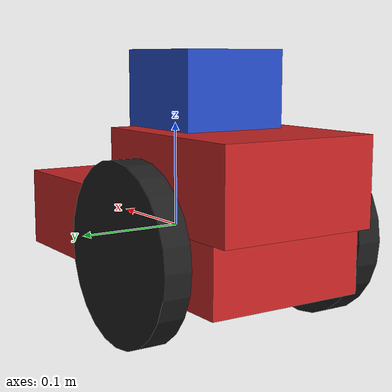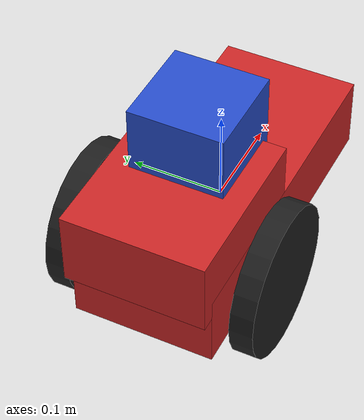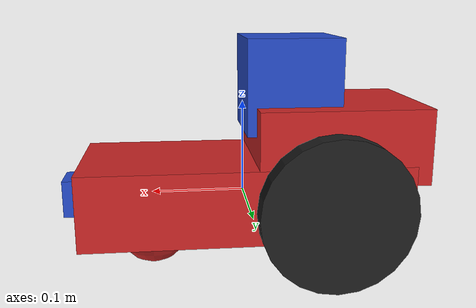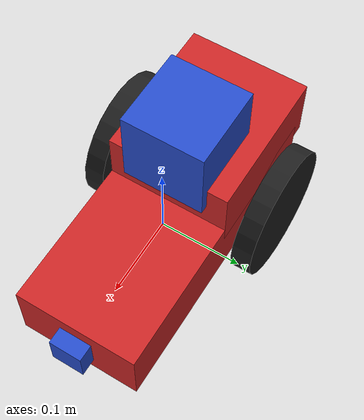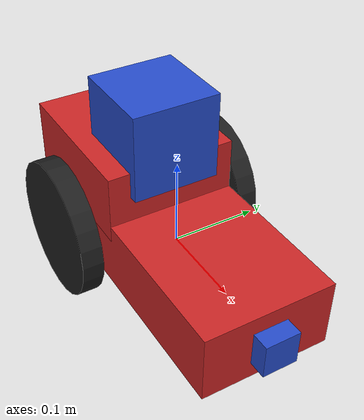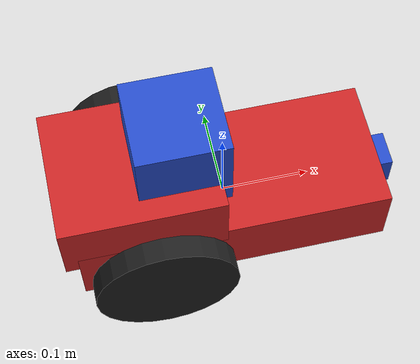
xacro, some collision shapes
<robot name="mobile_robot" xmlns:xacro="http://www.ros.org/wiki/xacro">
<xacro:include filename="$(find my_robot)/urdf/mobile_robot.gazebo" />

  <link name="robot_footprint"></link>

  <joint name="robot_footprint_joint" type="fixed">
    <origin xyz="0 0 0" rpy="0 0 0" />
    <parent link="robot_footprint"/>
    <child link="chassis" />
  </joint>

  <!-- chassis -->
  <link name='chassis'>
    <pose>0 0 0.1 0 0 0</pose>

    <inertial>
      <mass value="10.0"/>
      <origin xyz="0.0 0 0" rpy=" 0 0 0"/>
      <inertia
          ixx="0.1" ixy="0" ixz="0"
          iyy="0.1" iyz="0"
          izz="0.1"
      />
    </inertial>

    <collision name='chassis_collision'>
      <origin xyz="0 0 0" rpy=" 0 0 0"/>
      <geometry>
        <box size=".35 .15 .08"/>
      </geometry>
    </collision>

    <visual name='chassis_visual'>
      <origin xyz="0 0 0" rpy=" 0 0 0"/>
      <geometry>
        <box size=".35 .15 .08"/>
      </geometry>
    </visual>

    <!-- front_caster_collision -->
    <collision name='front_caster_collision'>
      <origin xyz="0.10 0 -0.04" rpy=" 0 0 0"/>
      <geometry>
        <sphere radius="0.04"/>
      </geometry>
    </collision>

    <visual name='front_caster_visual'>
      <origin xyz="0.10 0 -0.04" rpy=" 0 0 0"/>
      <geometry>
        <sphere radius="0.04"/>
      </geometry>
    </visual>
  </link>

  <!-- chassis_back -->
  <link name='chassis_back'>
    <inertial>
      <mass value="5.0"/>
      <origin xyz="0.0 0 0" rpy=" 0 0 0"/>
      <inertia
          ixx="0.1" ixy="0" ixz="0"
          iyy="0.1" iyz="0"
          izz="0.1"
      />
    </inertial>

    <collision name='chassis_back_collision'>
      <origin xyz="0 0 0" rpy=" 0 0 0"/>
      <geometry>
        <box size=".18 .15 .08"/>
      </geometry>
    </collision>

    <visual name='chassis_back_visual'>
      <origin xyz="0 0 0" rpy=" 0 0 0"/>
      <geometry>
        <box size=".18 .15 .08"/>
      </geometry>
    </visual>
    </link>

   <joint type="fixed" name="chassis_back_joint">
    <origin xyz="-0.1 0 0.06" rpy="0 0 0"/>
    <child link="chassis_back"/>
    <parent link="chassis"/>
    <axis xyz="0 1 0" rpy="0 0 0"/>
  </joint>

  <!-- left_wheel -->
   <link name='left_wheel'>
    <inertial>
      <mass value="2.5"/>
      <origin xyz="0 0 0" rpy=" 0 1.5707 1.5707"/>
      <inertia
        ixx="0.1" ixy="0" ixz="0"
        iyy="0.1" iyz="0"
        izz="0.1"
      />
    </inertial>

  <collision name='left_wheel_collision'>
    <origin xyz="0 0 0" rpy=" 0 1.5707 1.5707"/>
      <geometry>
        <cylinder radius=".08" length="0.025"/>
      </geometry>
  </collision>

  <visual name='left_wheel_visual'>
    <origin xyz="0 0 0" rpy=" 0 1.5707 1.5707"/>
    <geometry>
      <cylinder radius=".08" length="0.025"/>
    </geometry>
  </visual>
  </link>

  <joint type="continuous" name="left_wheel_hinge">
    <origin xyz="-0.085 0.1 0" rpy="0 0 0"/>
    <child link="left_wheel"/>
    <parent link="chassis"/>
    <axis xyz="0 1 0" rpy="0 0 0"/>
    <limit effort="10000" velocity="1000"/>
    <dynamics damping="1.0" friction="1.0"/>
  </joint>

  <!-- right_wheel -->
  <link name='right_wheel'>
    <inertial>
    <mass value="2.5"/>
    <origin xyz="0 0 0" rpy=" 0 1.5707 1.5707"/>
    <inertia
        ixx="0.1" ixy="0" ixz="0"
        iyy="0.1" iyz="0"
        izz="0.1"
    />
  </inertial>

  <collision name='right_wheel_collision'>
    <origin xyz="0 0 0" rpy=" 0 1.5707 1.5707"/>
    <geometry>
      <cylinder radius=".08" length="0.025"/>
    </geometry>
  </collision>

  <visual name='right_wheel_visual'>
    <origin xyz="0 0 0" rpy=" 0 1.5707 1.5707"/>
    <geometry>
      <cylinder radius=".08" length="0.025"/>
    </geometry>
  </visual>
  </link>

  <joint type="continuous" name="right_wheel_hinge">
    <origin xyz="-0.085 -0.1 0" rpy="0 0 0"/>
    <child link="right_wheel"/>
    <parent link="chassis"/>
    <axis xyz="0 1 0" rpy="0 0 0"/>
    <limit effort="10000" velocity="1000"/>
    <dynamics damping="1.0" friction="1.0"/>
  </joint>

  <!-- camera -->
  <link name='camera'>
    <inertial>
    <mass value="0.1"/>
    <origin xyz="0 0 0" rpy=" 0 0 0"/>
    <inertia
        ixx="1e-6" ixy="0" ixz="0"
        iyy="1e-6" iyz="0"
        izz="1e-6"
    />
  </inertial>

  <collision name='camera_collision'>
    <origin xyz="0 0 0" rpy=" 0 0 0"/>
    <geometry>
      <box size="0.04 0.04 0.04"/>
    </geometry>
  </collision>

  <visual name='camera_visual'>
    <origin xyz="0 0 0" rpy=" 0 0 0"/>
    <geometry>
      <box size="0.04 0.04 0.04"/>
    </geometry>
  </visual>
  </link>

  <joint type="fixed" name="camera_joint">
    <origin xyz="0.175 0 0" rpy="0 0 0"/>
    <child link="camera"/>
    <parent link="chassis"/>
    <axis xyz="0 1 0" rpy="0 0 0"/>
  </joint>

 <!-- hokuyo -->
 <link name='hokuyo'>
    <inertial>
    <mass value="1e-5"/>
    <origin xyz="0 0 0" rpy=" 0 0 0"/>
    <inertia
        ixx="1e-6" ixy="0" ixz="0"
        iyy="1e-6" iyz="0"
        izz="1e-6"
    />
  </inertial>

  <collision name='hokuyo_collision'>
    <origin xyz="0 0 0" rpy=" 0 0 0"/>
    <geometry>
      <box size="0.1 0.1 0.1"/>
    </geometry>
  </collision>

  <visual name='hokuyo_visual'>
    <origin xyz="0 0 0" rpy=" 0 0 0"/>
    <geometry>
      <mesh filename="package://my_robot/meshes/hokuyo.dae"/>
    </geometry>
  </visual>
  </link>

  <joint type="fixed" name="hokuyo_joint">
    <origin xyz="-0.05 0 0.12" rpy="0 0 0"/>
    <child link="hokuyo"/>
    <parent link="chassis"/>
    <axis xyz="0 1 0" rpy="0 0 0"/>
  </joint>

  <!-- colors -->
  <gazebo reference="left_wheel">
    <material>Gazebo/Black</material>
  </gazebo>

  <gazebo reference="right_wheel">
    <material>Gazebo/Black</material>
 </gazebo>

  <gazebo reference="chassis">
    <material>Gazebo/Red</material>
 </gazebo>

  <gazebo reference="chassis_back">
    <material>Gazebo/Red</material>
  </gazebo>

  <gazebo reference="camera">
    <material>Gazebo/Blue</material>
 </gazebo>

  <gazebo reference="hokuyo">
    <material>Gazebo/Blue</material>
 </gazebo>

</robot>
